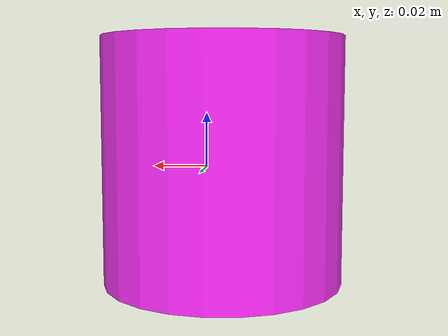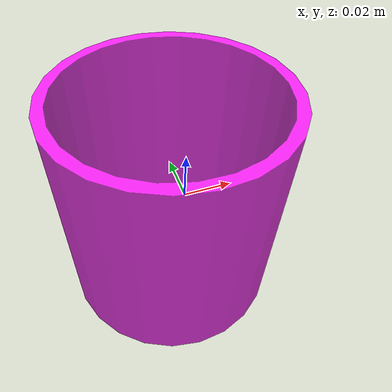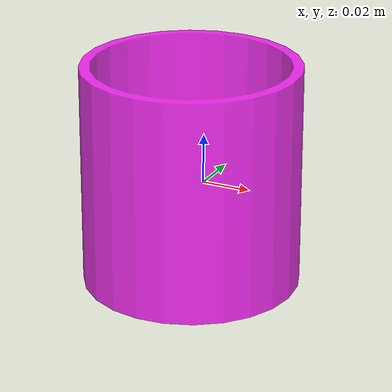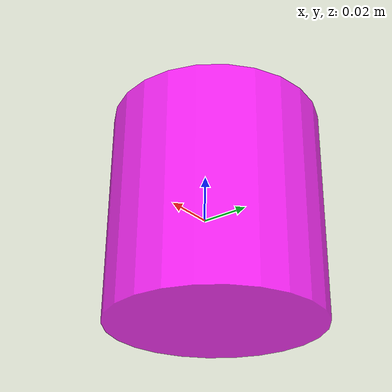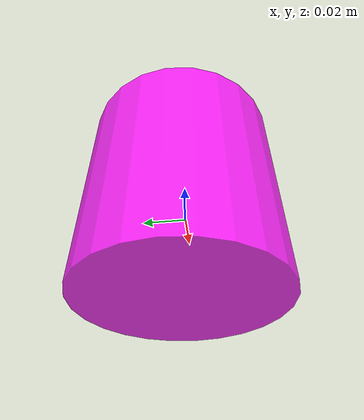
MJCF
<mujoco model="bottom_watertight_tiny">
  <default>
    <default group="2" type="mesh" contype="0" conaffinity="0">
      <geom group="2" type="mesh" contype="0" conaffinity="0"/>
    </default>
    <default group="3" type="mesh">
      <geom group="3" type="mesh"/>
    </default>
  </default>
  <asset>
    <mesh file="bottom_watertight_tiny.obj"/>
    <mesh file="bottom_watertight_tiny_collision_0.obj"/>
    <mesh file="bottom_watertight_tiny_collision_1.obj"/>
    <mesh file="bottom_watertight_tiny_collision_2.obj"/>
    <mesh file="bottom_watertight_tiny_collision_3.obj"/>
    <mesh file="bottom_watertight_tiny_collision_4.obj"/>
    <mesh file="bottom_watertight_tiny_collision_5.obj"/>
    <mesh file="bottom_watertight_tiny_collision_6.obj"/>
    <mesh file="bottom_watertight_tiny_collision_7.obj"/>
    <mesh file="bottom_watertight_tiny_collision_8.obj"/>
    <mesh file="bottom_watertight_tiny_collision_9.obj"/>
    <mesh file="bottom_watertight_tiny_collision_10.obj"/>
    <mesh file="bottom_watertight_tiny_collision_11.obj"/>
    <mesh file="bottom_watertight_tiny_collision_12.obj"/>
    <mesh file="bottom_watertight_tiny_collision_13.obj"/>
    <mesh file="bottom_watertight_tiny_collision_14.obj"/>
    <mesh file="bottom_watertight_tiny_collision_15.obj"/>
    <mesh file="bottom_watertight_tiny_collision_16.obj"/>
    <mesh file="bottom_watertight_tiny_collision_17.obj"/>
    <mesh file="bottom_watertight_tiny_collision_18.obj"/>
    <mesh file="bottom_watertight_tiny_collision_19.obj"/>
    <mesh file="bottom_watertight_tiny_collision_20.obj"/>
    <mesh file="bottom_watertight_tiny_collision_21.obj"/>
    <mesh file="bottom_watertight_tiny_collision_22.obj"/>
    <mesh file="bottom_watertight_tiny_collision_23.obj"/>
    <mesh file="bottom_watertight_tiny_collision_24.obj"/>
    <mesh file="bottom_watertight_tiny_collision_25.obj"/>
    <mesh file="bottom_watertight_tiny_collision_26.obj"/>
    <mesh file="bottom_watertight_tiny_collision_27.obj"/>
    <mesh file="bottom_watertight_tiny_collision_28.obj"/>
    <mesh file="bottom_watertight_tiny_collision_29.obj"/>
    <mesh file="bottom_watertight_tiny_collision_30.obj"/>
    <mesh file="bottom_watertight_tiny_collision_31.obj"/>
    <mesh file="bottom_watertight_tiny_collision_32.obj"/>
    <mesh file="bottom_watertight_tiny_collision_33.obj"/>
    <mesh file="bottom_watertight_tiny_collision_34.obj"/>
    <mesh file="bottom_watertight_tiny_collision_35.obj"/>
  </asset>
  <worldbody>
    <body name="bottom_watertight_tiny">
      <freejoint/>
      <geom mesh="bottom_watertight_tiny" group="2" type="mesh" rgba="1 0 1 0.8" contype="0" conaffinity="0"/>
      <geom mesh="bottom_watertight_tiny_collision_0" rgba="0.66080150862864 0.5380058882054022 0.9854906493453122 1" group="3" type="mesh"/>
      <geom mesh="bottom_watertight_tiny_collision_1" rgba="0.8649680687118713 0.025684688969506264 0.5476656230753271 1" group="3" type="mesh"/>
      <geom mesh="bottom_watertight_tiny_collision_2" rgba="0.7190721837692917 0.32312527609018815 0.46700004640861026 1" group="3" type="mesh"/>
      <geom mesh="bottom_watertight_tiny_collision_3" rgba="0.8174538532231137 0.6223369316866464 0.7769377814124889 1" group="3" type="mesh"/>
      <geom mesh="bottom_watertight_tiny_collision_4" rgba="0.9188647188278755 0.6898727974327402 0.5772653742809447 1" group="3" type="mesh"/>
      <geom mesh="bottom_watertight_tiny_collision_5" rgba="0.7871124796325047 0.8751465368533379 0.4808815155805871 1" group="3" type="mesh"/>
      <geom mesh="bottom_watertight_tiny_collision_6" rgba="0.29520945920093844 0.2335041118286144 0.15505170144559077 1" group="3" type="mesh"/>
      <geom mesh="bottom_watertight_tiny_collision_7" rgba="0.7725176207239992 0.025548576150831392 0.040658963223252687 1" group="3" type="mesh"/>
      <geom mesh="bottom_watertight_tiny_collision_8" rgba="0.6622442059564169 0.45142412913539287 0.3436647001896823 1" group="3" type="mesh"/>
      <geom mesh="bottom_watertight_tiny_collision_9" rgba="0.39908856549979177 0.30661900005466314 0.5661970269167976 1" group="3" type="mesh"/>
      <geom mesh="bottom_watertight_tiny_collision_10" rgba="0.021087211552862972 0.3944265227092989 0.33080358485430217 1" group="3" type="mesh"/>
      <geom mesh="bottom_watertight_tiny_collision_11" rgba="0.935881609642433 0.09289435291431514 0.35753817232795104 1" group="3" type="mesh"/>
      <geom mesh="bottom_watertight_tiny_collision_12" rgba="0.30622835095484513 0.2160495255090752 0.13852656190172574 1" group="3" type="mesh"/>
      <geom mesh="bottom_watertight_tiny_collision_13" rgba="0.04934990661393368 0.3920735361064366 0.709738952982324 1" group="3" type="mesh"/>
      <geom mesh="bottom_watertight_tiny_collision_14" rgba="0.06067465002887629 0.5587213332842239 0.27173847698878195 1" group="3" type="mesh"/>
      <geom mesh="bottom_watertight_tiny_collision_15" rgba="0.4991898335563617 0.4533180623291694 0.23684187156783953 1" group="3" type="mesh"/>
      <geom mesh="bottom_watertight_tiny_collision_16" rgba="0.9605135273251614 0.8066761268614557 0.5523606416400294 1" group="3" type="mesh"/>
      <geom mesh="bottom_watertight_tiny_collision_17" rgba="0.47206955028908204 0.9868504021448171 0.17027488436945726 1" group="3" type="mesh"/>
      <geom mesh="bottom_watertight_tiny_collision_18" rgba="0.06592308806887626 0.9146155892597078 0.5018748995981298 1" group="3" type="mesh"/>
      <geom mesh="bottom_watertight_tiny_collision_19" rgba="0.009426326521721151 0.7528586866932523 0.6044291662573583 1" group="3" type="mesh"/>
      <geom mesh="bottom_watertight_tiny_collision_20" rgba="0.016806984184785434 0.5035154941881558 0.5959573673118701 1" group="3" type="mesh"/>
      <geom mesh="bottom_watertight_tiny_collision_21" rgba="0.7353986665774392 0.8767327162596925 0.5214748263434036 1" group="3" type="mesh"/>
      <geom mesh="bottom_watertight_tiny_collision_22" rgba="0.5602148324206766 0.2387717595431934 0.001819294332831789 1" group="3" type="mesh"/>
      <geom mesh="bottom_watertight_tiny_collision_23" rgba="0.6208296880220707 0.896640417259734 0.519115348173543 1" group="3" type="mesh"/>
      <geom mesh="bottom_watertight_tiny_collision_24" rgba="0.8039600097709819 0.115333407123974 0.28596260183015654 1" group="3" type="mesh"/>
      <geom mesh="bottom_watertight_tiny_collision_25" rgba="0.4526812242121919 0.2492946263292195 0.7155606681686345 1" group="3" type="mesh"/>
      <geom mesh="bottom_watertight_tiny_collision_26" rgba="0.3863429359029915 0.1442949494930279 0.9830823693542962 1" group="3" type="mesh"/>
      <geom mesh="bottom_watertight_tiny_collision_27" rgba="0.6452511735029485 0.1313918382837599 0.7687265166699264 1" group="3" type="mesh"/>
      <geom mesh="bottom_watertight_tiny_collision_28" rgba="0.46099155087111987 0.40242360836130775 0.23511295977268842 1" group="3" type="mesh"/>
      <geom mesh="bottom_watertight_tiny_collision_29" rgba="0.49455472236487485 0.40747496676516504 0.30927563459365937 1" group="3" type="mesh"/>
      <geom mesh="bottom_watertight_tiny_collision_30" rgba="0.413813224159961 0.7566762577621784 0.40750066337400725 1" group="3" type="mesh"/>
      <geom mesh="bottom_watertight_tiny_collision_31" rgba="0.2738279143976198 0.45576113009302655 0.8145147052523032 1" group="3" type="mesh"/>
      <geom mesh="bottom_watertight_tiny_collision_32" rgba="0.43305578885202356 0.1698517166744351 0.5675566060264888 1" group="3" type="mesh"/>
      <geom mesh="bottom_watertight_tiny_collision_33" rgba="0.8831367917108067 0.18801682252636265 0.24241187530728192 1" group="3" type="mesh"/>
      <geom mesh="bottom_watertight_tiny_collision_34" rgba="0.3435362485754758 0.9700541292511567 0.4830027376160766 1" group="3" type="mesh"/>
      <geom mesh="bottom_watertight_tiny_collision_35" rgba="0.6129648751210887 0.04481082269593284 0.7479011668473566 1" group="3" type="mesh"/>
    </body>
  </worldbody>
</mujoco>
